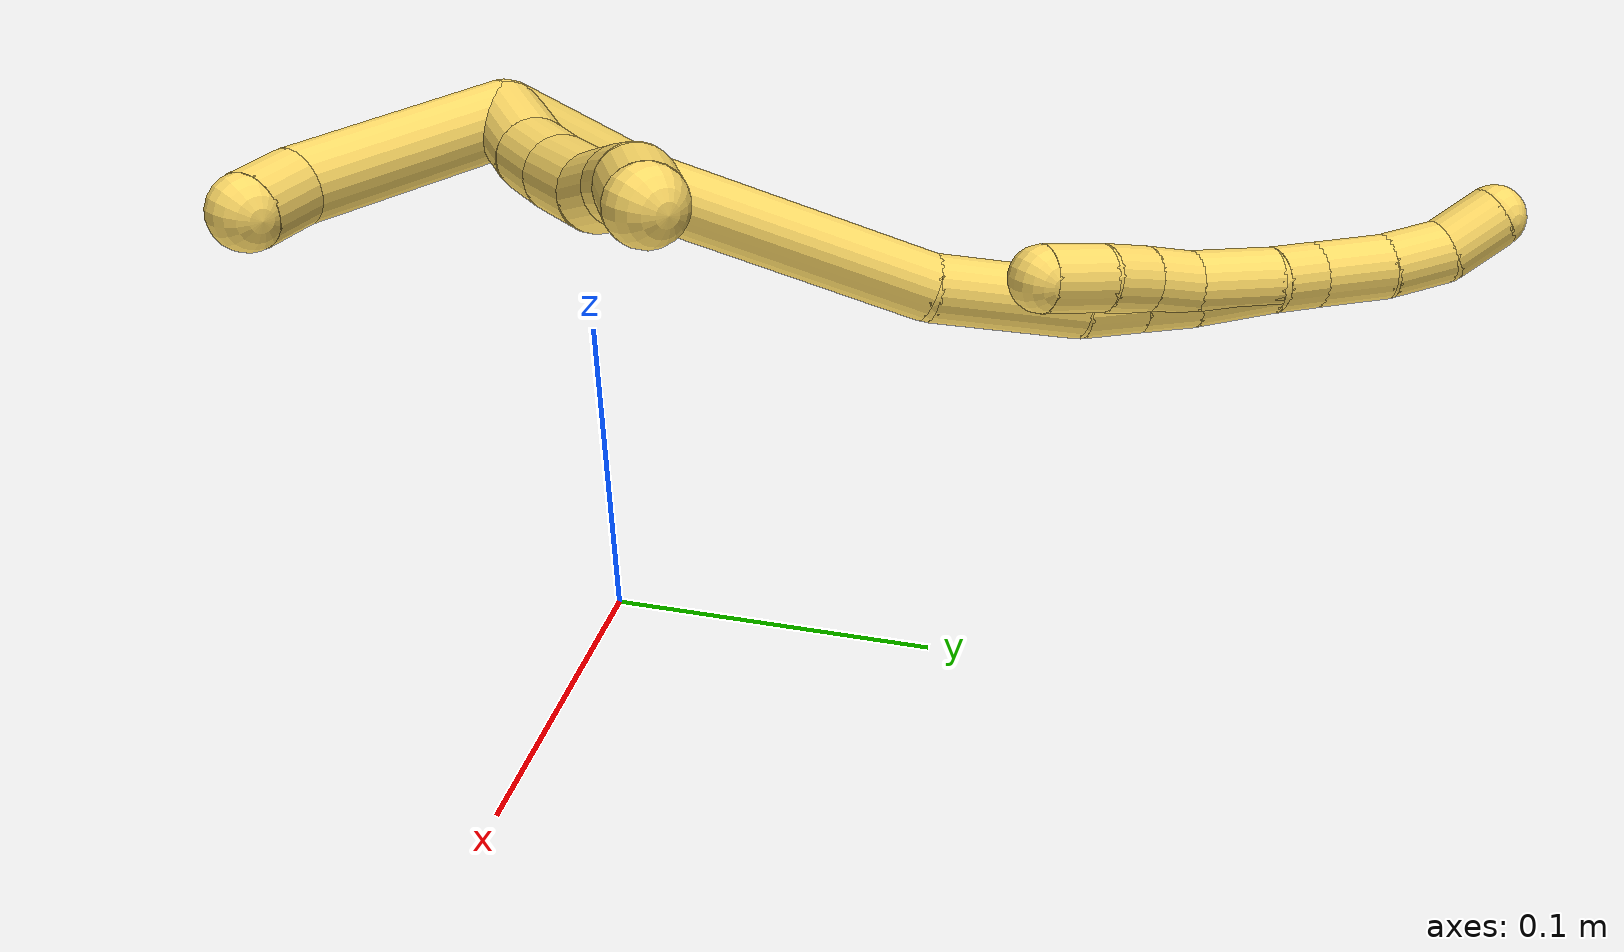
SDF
<sdf version="1.7">
 <world name="default">
  <model name="5">
   <static>0</static>
   <link name="5">
    <collision name="collision-cylinder-e_1_2_8">
     <pose>0.003328 -0.001445 0.014878 0.096834 0.219062 0.010657</pose>
     <geometry><cylinder><radius>0.0125</radius><length>0.030628</length></cylinder></geometry>
     <surface>
      <friction><ode><mu>1.16</mu><mu2>1.16</mu2><slip1>0</slip1><slip2>0</slip2></ode></friction>
      <contact><ode><kp>1e+06</kp><kd>1</kd><max_vel>0</max_vel><min_depth>0.001</min_depth></ode></contact>
     </surface>
    </collision>
    <visual name="visual-cylinder-e_1_2_8">
     <pose>0.003328 -0.001445 0.014878 0.096834 0.219062 0.010657</pose>
     <geometry><cylinder><radius>0.0125</radius><length>0.030628</length></cylinder></geometry>
     <material><ambient>1 0.858824 0.4 1</ambient></material>
    </visual>
    <collision name="collision-cylinder-e_2_8_9">
     <pose>0.007239 -0.003988 0.041217 0.095436 0.050581 0.002416</pose>
     <geometry><cylinder><radius>0.0125</radius><length>0.023057</length></cylinder></geometry>
     <surface>
      <friction><ode><mu>1.16</mu><mu2>1.16</mu2><slip1>0</slip1><slip2>0</slip2></ode></friction>
      <contact><ode><kp>1e+06</kp><kd>1</kd><max_vel>0</max_vel><min_depth>0.001</min_depth></ode></contact>
     </surface>
    </collision>
    <visual name="visual-cylinder-e_2_8_9">
     <pose>0.007239 -0.003988 0.041217 0.095436 0.050581 0.002416</pose>
     <geometry><cylinder><radius>0.0125</radius><length>0.023057</length></cylinder></geometry>
     <material><ambient>1 0.858824 0.4 1</ambient></material>
    </visual>
    <collision name="collision-cylinder-e_3_9_10">
     <pose>0.007654 -0.007415 0.067494 0.156025 -0.01114 -0.000871</pose>
     <geometry><cylinder><radius>0.0125</radius><length>0.029999</length></cylinder></geometry>
     <surface>
      <friction><ode><mu>1.16</mu><mu2>1.16</mu2><slip1>0</slip1><slip2>0</slip2></ode></friction>
      <contact><ode><kp>1e+06</kp><kd>1</kd><max_vel>0</max_vel><min_depth>0.001</min_depth></ode></contact>
     </surface>
    </collision>
    <visual name="visual-cylinder-e_3_9_10">
     <pose>0.007654 -0.007415 0.067494 0.156025 -0.01114 -0.000871</pose>
     <geometry><cylinder><radius>0.0125</radius><length>0.029999</length></cylinder></geometry>
     <material><ambient>1 0.858824 0.4 1</ambient></material>
    </visual>
    <collision name="collision-cylinder-e_4_10_11">
     <pose>0.004565 -0.01292 0.093324 0.280554 -0.249674 -0.035436</pose>
     <geometry><cylinder><radius>0.0125</radius><length>0.023656</length></cylinder></geometry>
     <surface>
      <friction><ode><mu>1.16</mu><mu2>1.16</mu2><slip1>0</slip1><slip2>0</slip2></ode></friction>
      <contact><ode><kp>1e+06</kp><kd>1</kd><max_vel>0</max_vel><min_depth>0.001</min_depth></ode></contact>
     </surface>
    </collision>
    <visual name="visual-cylinder-e_4_10_11">
     <pose>0.004565 -0.01292 0.093324 0.280554 -0.249674 -0.035436</pose>
     <geometry><cylinder><radius>0.0125</radius><length>0.023656</length></cylinder></geometry>
     <material><ambient>1 0.858824 0.4 1</ambient></material>
    </visual>
    <collision name="collision-cylinder-e_5_11_12">
     <pose>0.000322 -0.020473 0.114135 0.420385 -0.122424 -0.02615</pose>
     <geometry><cylinder><radius>0.0125</radius><length>0.021627</length></cylinder></geometry>
     <surface>
      <friction><ode><mu>1.16</mu><mu2>1.16</mu2><slip1>0</slip1><slip2>0</slip2></ode></friction>
      <contact><ode><kp>1e+06</kp><kd>1</kd><max_vel>0</max_vel><min_depth>0.001</min_depth></ode></contact>
     </surface>
    </collision>
    <visual name="visual-cylinder-e_5_11_12">
     <pose>0.000322 -0.020473 0.114135 0.420385 -0.122424 -0.02615</pose>
     <geometry><cylinder><radius>0.0125</radius><length>0.021627</length></cylinder></geometry>
     <material><ambient>1 0.858824 0.4 1</ambient></material>
    </visual>
    <collision name="collision-cylinder-e_6_12_6">
     <pose>0.00043 -0.028602 0.133655 0.368034 0.136266 0.0254</pose>
     <geometry><cylinder><radius>0.0125</radius><length>0.021034</length></cylinder></geometry>
     <surface>
      <friction><ode><mu>1.16</mu><mu2>1.16</mu2><slip1>0</slip1><slip2>0</slip2></ode></friction>
      <contact><ode><kp>1e+06</kp><kd>1</kd><max_vel>0</max_vel><min_depth>0.001</min_depth></ode></contact>
     </surface>
    </collision>
    <visual name="visual-cylinder-e_6_12_6">
     <pose>0.00043 -0.028602 0.133655 0.368034 0.136266 0.0254</pose>
     <geometry><cylinder><radius>0.0125</radius><length>0.021034</length></cylinder></geometry>
     <material><ambient>1 0.858824 0.4 1</ambient></material>
    </visual>
    <collision name="collision-cylinder-e_1_2_13">
     <pose>0.021167 -0.032554 0.005584 1.40092 0.569932 0.484247</pose>
     <geometry><cylinder><radius>0.0125</radius><length>0.07846</length></cylinder></geometry>
     <surface>
      <friction><ode><mu>1.16</mu><mu2>1.16</mu2><slip1>0</slip1><slip2>0</slip2></ode></friction>
      <contact><ode><kp>1e+06</kp><kd>1</kd><max_vel>0</max_vel><min_depth>0.001</min_depth></ode></contact>
     </surface>
    </collision>
    <visual name="visual-cylinder-e_1_2_13">
     <pose>0.021167 -0.032554 0.005584 1.40092 0.569932 0.484247</pose>
     <geometry><cylinder><radius>0.0125</radius><length>0.07846</length></cylinder></geometry>
     <material><ambient>1 0.858824 0.4 1</ambient></material>
    </visual>
    <collision name="collision-cylinder-e_2_13_5">
     <pose>0.047529 -0.073118 0.016153 1.01413 0.503228 0.283685</pose>
     <geometry><cylinder><radius>0.0125</radius><length>0.02154</length></cylinder></geometry>
     <surface>
      <friction><ode><mu>1.16</mu><mu2>1.16</mu2><slip1>0</slip1><slip2>0</slip2></ode></friction>
      <contact><ode><kp>1e+06</kp><kd>1</kd><max_vel>0</max_vel><min_depth>0.001</min_depth></ode></contact>
     </surface>
    </collision>
    <visual name="visual-cylinder-e_2_13_5">
     <pose>0.047529 -0.073118 0.016153 1.01413 0.503228 0.283685</pose>
     <geometry><cylinder><radius>0.0125</radius><length>0.02154</length></cylinder></geometry>
     <material><ambient>1 0.858824 0.4 1</ambient></material>
    </visual>
    <collision name="collision-cylinder-e_1_2_14">
     <pose>0.002721 0.027853 0.003269 -1.45398 0.096711 -0.086039</pose>
     <geometry><cylinder><radius>0.0125</radius><length>0.056351</length></cylinder></geometry>
     <surface>
      <friction><ode><mu>1.16</mu><mu2>1.16</mu2><slip1>0</slip1><slip2>0</slip2></ode></friction>
      <contact><ode><kp>1e+06</kp><kd>1</kd><max_vel>0</max_vel><min_depth>0.001</min_depth></ode></contact>
     </surface>
    </collision>
    <visual name="visual-cylinder-e_1_2_14">
     <pose>0.002721 0.027853 0.003269 -1.45398 0.096711 -0.086039</pose>
     <geometry><cylinder><radius>0.0125</radius><length>0.056351</length></cylinder></geometry>
     <material><ambient>1 0.858824 0.4 1</ambient></material>
    </visual>
    <collision name="collision-cylinder-e_2_14_15">
     <pose>0.003045 0.104444 0.028899 -1.14063 -0.044652 0.028643</pose>
     <geometry><cylinder><radius>0.0125</radius><length>0.107354</length></cylinder></geometry>
     <surface>
      <friction><ode><mu>1.16</mu><mu2>1.16</mu2><slip1>0</slip1><slip2>0</slip2></ode></friction>
      <contact><ode><kp>1e+06</kp><kd>1</kd><max_vel>0</max_vel><min_depth>0.001</min_depth></ode></contact>
     </surface>
    </collision>
    <visual name="visual-cylinder-e_2_14_15">
     <pose>0.003045 0.104444 0.028899 -1.14063 -0.044652 0.028643</pose>
     <geometry><cylinder><radius>0.0125</radius><length>0.107354</length></cylinder></geometry>
     <material><ambient>1 0.858824 0.4 1</ambient></material>
    </visual>
    <collision name="collision-cylinder-e_3_15_16">
     <pose>-0.00656 0.18025 0.060414 -1.2447 -0.247138 0.17775</pose>
     <geometry><cylinder><radius>0.0125</radius><length>0.058937</length></cylinder></geometry>
     <surface>
      <friction><ode><mu>1.16</mu><mu2>1.16</mu2><slip1>0</slip1><slip2>0</slip2></ode></friction>
      <contact><ode><kp>1e+06</kp><kd>1</kd><max_vel>0</max_vel><min_depth>0.001</min_depth></ode></contact>
     </surface>
    </collision>
    <visual name="visual-cylinder-e_3_15_16">
     <pose>-0.00656 0.18025 0.060414 -1.2447 -0.247138 0.17775</pose>
     <geometry><cylinder><radius>0.0125</radius><length>0.058937</length></cylinder></geometry>
     <material><ambient>1 0.858824 0.4 1</ambient></material>
    </visual>
    <collision name="collision-cylinder-e_4_16_17">
     <pose>-0.018686 0.217325 0.072784 -1.25988 -0.437533 0.321364</pose>
     <geometry><cylinder><radius>0.0125</radius><length>0.023211</length></cylinder></geometry>
     <surface>
      <friction><ode><mu>1.16</mu><mu2>1.16</mu2><slip1>0</slip1><slip2>0</slip2></ode></friction>
      <contact><ode><kp>1e+06</kp><kd>1</kd><max_vel>0</max_vel><min_depth>0.001</min_depth></ode></contact>
     </surface>
    </collision>
    <visual name="visual-cylinder-e_4_16_17">
     <pose>-0.018686 0.217325 0.072784 -1.25988 -0.437533 0.321364</pose>
     <geometry><cylinder><radius>0.0125</radius><length>0.023211</length></cylinder></geometry>
     <material><ambient>1 0.858824 0.4 1</ambient></material>
    </visual>
    <collision name="collision-cylinder-e_5_17_18">
     <pose>-0.028252 0.236757 0.079172 -1.24606 -0.437355 0.316671</pose>
     <geometry><cylinder><radius>0.0125</radius><length>0.021952</length></cylinder></geometry>
     <surface>
      <friction><ode><mu>1.16</mu><mu2>1.16</mu2><slip1>0</slip1><slip2>0</slip2></ode></friction>
      <contact><ode><kp>1e+06</kp><kd>1</kd><max_vel>0</max_vel><min_depth>0.001</min_depth></ode></contact>
     </surface>
    </collision>
    <visual name="visual-cylinder-e_5_17_18">
     <pose>-0.028252 0.236757 0.079172 -1.24606 -0.437355 0.316671</pose>
     <geometry><cylinder><radius>0.0125</radius><length>0.021952</length></cylinder></geometry>
     <material><ambient>1 0.858824 0.4 1</ambient></material>
    </visual>
    <collision name="collision-cylinder-e_6_18_1">
     <pose>-0.041116 0.258814 0.088003 -1.14972 -0.535573 0.351831</pose>
     <geometry><cylinder><radius>0.0125</radius><length>0.032194</length></cylinder></geometry>
     <surface>
      <friction><ode><mu>1.16</mu><mu2>1.16</mu2><slip1>0</slip1><slip2>0</slip2></ode></friction>
      <contact><ode><kp>1e+06</kp><kd>1</kd><max_vel>0</max_vel><min_depth>0.001</min_depth></ode></contact>
     </surface>
    </collision>
    <visual name="visual-cylinder-e_6_18_1">
     <pose>-0.041116 0.258814 0.088003 -1.14972 -0.535573 0.351831</pose>
     <geometry><cylinder><radius>0.0125</radius><length>0.032194</length></cylinder></geometry>
     <material><ambient>1 0.858824 0.4 1</ambient></material>
    </visual>
    <collision name="collision-cylinder-e_1_1_19">
     <pose>-0.042639 0.256542 0.088601 1.89808 0.401956 0.554005</pose>
     <geometry><cylinder><radius>0.0125</radius><length>0.034211</length></cylinder></geometry>
     <surface>
      <friction><ode><mu>1.16</mu><mu2>1.16</mu2><slip1>0</slip1><slip2>0</slip2></ode></friction>
      <contact><ode><kp>1e+06</kp><kd>1</kd><max_vel>0</max_vel><min_depth>0.001</min_depth></ode></contact>
     </surface>
    </collision>
    <visual name="visual-cylinder-e_1_1_19">
     <pose>-0.042639 0.256542 0.088601 1.89808 0.401956 0.554005</pose>
     <geometry><cylinder><radius>0.0125</radius><length>0.034211</length></cylinder></geometry>
     <material><ambient>1 0.858824 0.4 1</ambient></material>
    </visual>
    <collision name="collision-cylinder-e_2_19_20">
     <pose>-0.03354 0.231987 0.081908 1.7384 0.241159 0.28484</pose>
     <geometry><cylinder><radius>0.0125</radius><length>0.020154</length></cylinder></geometry>
     <surface>
      <friction><ode><mu>1.16</mu><mu2>1.16</mu2><slip1>0</slip1><slip2>0</slip2></ode></friction>
      <contact><ode><kp>1e+06</kp><kd>1</kd><max_vel>0</max_vel><min_depth>0.001</min_depth></ode></contact>
     </surface>
    </collision>
    <visual name="visual-cylinder-e_2_19_20">
     <pose>-0.03354 0.231987 0.081908 1.7384 0.241159 0.28484</pose>
     <geometry><cylinder><radius>0.0125</radius><length>0.020154</length></cylinder></geometry>
     <material><ambient>1 0.858824 0.4 1</ambient></material>
    </visual>
    <collision name="collision-cylinder-e_3_20_21">
     <pose>-0.028537 0.212568 0.079818 1.61755 0.259469 0.271744</pose>
     <geometry><cylinder><radius>0.0125</radius><length>0.020242</length></cylinder></geometry>
     <surface>
      <friction><ode><mu>1.16</mu><mu2>1.16</mu2><slip1>0</slip1><slip2>0</slip2></ode></friction>
      <contact><ode><kp>1e+06</kp><kd>1</kd><max_vel>0</max_vel><min_depth>0.001</min_depth></ode></contact>
     </surface>
    </collision>
    <visual name="visual-cylinder-e_3_20_21">
     <pose>-0.028537 0.212568 0.079818 1.61755 0.259469 0.271744</pose>
     <geometry><cylinder><radius>0.0125</radius><length>0.020242</length></cylinder></geometry>
     <material><ambient>1 0.858824 0.4 1</ambient></material>
    </visual>
    <collision name="collision-cylinder-e_4_21_4">
     <pose>-0.021753 0.190953 0.077509 1.72593 0.336042 0.391346</pose>
     <geometry><cylinder><radius>0.0125</radius><length>0.025394</length></cylinder></geometry>
     <surface>
      <friction><ode><mu>1.16</mu><mu2>1.16</mu2><slip1>0</slip1><slip2>0</slip2></ode></friction>
      <contact><ode><kp>1e+06</kp><kd>1</kd><max_vel>0</max_vel><min_depth>0.001</min_depth></ode></contact>
     </surface>
    </collision>
    <visual name="visual-cylinder-e_4_21_4">
     <pose>-0.021753 0.190953 0.077509 1.72593 0.336042 0.391346</pose>
     <geometry><cylinder><radius>0.0125</radius><length>0.025394</length></cylinder></geometry>
     <material><ambient>1 0.858824 0.4 1</ambient></material>
    </visual>
    <collision name="collision-cylinder-e_1_1_22">
     <pose>-0.053346 0.280591 0.094659 -1.46212 -0.411616 0.370167</pose>
     <geometry><cylinder><radius>0.0125</radius><length>0.02007</length></cylinder></geometry>
     <surface>
      <friction><ode><mu>1.16</mu><mu2>1.16</mu2><slip1>0</slip1><slip2>0</slip2></ode></friction>
      <contact><ode><kp>1e+06</kp><kd>1</kd><max_vel>0</max_vel><min_depth>0.001</min_depth></ode></contact>
     </surface>
    </collision>
    <visual name="visual-cylinder-e_1_1_22">
     <pose>-0.053346 0.280591 0.094659 -1.46212 -0.411616 0.370167</pose>
     <geometry><cylinder><radius>0.0125</radius><length>0.02007</length></cylinder></geometry>
     <material><ambient>1 0.858824 0.4 1</ambient></material>
    </visual>
    <collision name="collision-cylinder-e_2_22_23">
     <pose>-0.064203 0.301742 0.100936 -1.1566 -0.480804 0.317339</pose>
     <geometry><cylinder><radius>0.0125</radius><length>0.02959</length></cylinder></geometry>
     <surface>
      <friction><ode><mu>1.16</mu><mu2>1.16</mu2><slip1>0</slip1><slip2>0</slip2></ode></friction>
      <contact><ode><kp>1e+06</kp><kd>1</kd><max_vel>0</max_vel><min_depth>0.001</min_depth></ode></contact>
     </surface>
    </collision>
    <visual name="visual-cylinder-e_2_22_23">
     <pose>-0.064203 0.301742 0.100936 -1.1566 -0.480804 0.317339</pose>
     <geometry><cylinder><radius>0.0125</radius><length>0.02959</length></cylinder></geometry>
     <material><ambient>1 0.858824 0.4 1</ambient></material>
    </visual>
    <collision name="collision-cylinder-e_3_23_24">
     <pose>-0.078088 0.323437 0.109756 -1.22028 -0.599068 0.425289</pose>
     <geometry><cylinder><radius>0.0125</radius><length>0.024976</length></cylinder></geometry>
     <surface>
      <friction><ode><mu>1.16</mu><mu2>1.16</mu2><slip1>0</slip1><slip2>0</slip2></ode></friction>
      <contact><ode><kp>1e+06</kp><kd>1</kd><max_vel>0</max_vel><min_depth>0.001</min_depth></ode></contact>
     </surface>
    </collision>
    <visual name="visual-cylinder-e_3_23_24">
     <pose>-0.078088 0.323437 0.109756 -1.22028 -0.599068 0.425289</pose>
     <geometry><cylinder><radius>0.0125</radius><length>0.024976</length></cylinder></geometry>
     <material><ambient>1 0.858824 0.4 1</ambient></material>
    </visual>
    <collision name="collision-cylinder-e_4_24_3">
     <pose>-0.095324 0.340141 0.116063 -1.19538 -0.933792 0.661107</pose>
     <geometry><cylinder><radius>0.0125</radius><length>0.025363</length></cylinder></geometry>
     <surface>
      <friction><ode><mu>1.16</mu><mu2>1.16</mu2><slip1>0</slip1><slip2>0</slip2></ode></friction>
      <contact><ode><kp>1e+06</kp><kd>1</kd><max_vel>0</max_vel><min_depth>0.001</min_depth></ode></contact>
     </surface>
    </collision>
    <visual name="visual-cylinder-e_4_24_3">
     <pose>-0.095324 0.340141 0.116063 -1.19538 -0.933792 0.661107</pose>
     <geometry><cylinder><radius>0.0125</radius><length>0.025363</length></cylinder></geometry>
     <material><ambient>1 0.858824 0.4 1</ambient></material>
    </visual>
    <collision name="collision-sphere-3">
     <pose>-0.105518 0.347158 0.118829 0 -0 0</pose>
     <geometry><sphere><radius>0.0125</radius></sphere></geometry>
     <surface>
      <friction><ode><mu>1.16</mu><mu2>1.16</mu2><slip1>0</slip1><slip2>0</slip2></ode></friction>
      <contact><ode><kp>1e+06</kp><kd>1</kd><max_vel>0</max_vel><min_depth>0.001</min_depth></ode></contact>
     </surface>
    </collision>
    <visual name="visual-sphere-3">
     <pose>-0.105518 0.347158 0.118829 0 -0 0</pose>
     <geometry><sphere><radius>0.0125</radius></sphere></geometry>
     <material><ambient>1 0.858824 0.4 1</ambient></material>
    </visual>
    <collision name="collision-sphere-24">
     <pose>-0.085129 0.333123 0.113298 0 -0 0</pose>
     <geometry><sphere><radius>0.0125</radius></sphere></geometry>
     <surface>
      <friction><ode><mu>1.16</mu><mu2>1.16</mu2><slip1>0</slip1><slip2>0</slip2></ode></friction>
      <contact><ode><kp>1e+06</kp><kd>1</kd><max_vel>0</max_vel><min_depth>0.001</min_depth></ode></contact>
     </surface>
    </collision>
    <visual name="visual-sphere-24">
     <pose>-0.085129 0.333123 0.113298 0 -0 0</pose>
     <geometry><sphere><radius>0.0125</radius></sphere></geometry>
     <material><ambient>1 0.858824 0.4 1</ambient></material>
    </visual>
    <collision name="collision-sphere-23">
     <pose>-0.071046 0.31375 0.106215 0 -0 0</pose>
     <geometry><sphere><radius>0.0125</radius></sphere></geometry>
     <surface>
      <friction><ode><mu>1.16</mu><mu2>1.16</mu2><slip1>0</slip1><slip2>0</slip2></ode></friction>
      <contact><ode><kp>1e+06</kp><kd>1</kd><max_vel>0</max_vel><min_depth>0.001</min_depth></ode></contact>
     </surface>
    </collision>
    <visual name="visual-sphere-23">
     <pose>-0.071046 0.31375 0.106215 0 -0 0</pose>
     <geometry><sphere><radius>0.0125</radius></sphere></geometry>
     <material><ambient>1 0.858824 0.4 1</ambient></material>
    </visual>
    <collision name="collision-sphere-22">
     <pose>-0.057361 0.289734 0.095656 0 -0 0</pose>
     <geometry><sphere><radius>0.0125</radius></sphere></geometry>
     <surface>
      <friction><ode><mu>1.16</mu><mu2>1.16</mu2><slip1>0</slip1><slip2>0</slip2></ode></friction>
      <contact><ode><kp>1e+06</kp><kd>1</kd><max_vel>0</max_vel><min_depth>0.001</min_depth></ode></contact>
     </surface>
    </collision>
    <visual name="visual-sphere-22">
     <pose>-0.057361 0.289734 0.095656 0 -0 0</pose>
     <geometry><sphere><radius>0.0125</radius></sphere></geometry>
     <material><ambient>1 0.858824 0.4 1</ambient></material>
    </visual>
    <collision name="collision-sphere-4">
     <pose>-0.017566 0.179111 0.075657 0 -0 0</pose>
     <geometry><sphere><radius>0.0125</radius></sphere></geometry>
     <surface>
      <friction><ode><mu>1.16</mu><mu2>1.16</mu2><slip1>0</slip1><slip2>0</slip2></ode></friction>
      <contact><ode><kp>1e+06</kp><kd>1</kd><max_vel>0</max_vel><min_depth>0.001</min_depth></ode></contact>
     </surface>
    </collision>
    <visual name="visual-sphere-4">
     <pose>-0.017566 0.179111 0.075657 0 -0 0</pose>
     <geometry><sphere><radius>0.0125</radius></sphere></geometry>
     <material><ambient>1 0.858824 0.4 1</ambient></material>
    </visual>
    <collision name="collision-sphere-21">
     <pose>-0.02594 0.202796 0.079361 0 -0 0</pose>
     <geometry><sphere><radius>0.0125</radius></sphere></geometry>
     <surface>
      <friction><ode><mu>1.16</mu><mu2>1.16</mu2><slip1>0</slip1><slip2>0</slip2></ode></friction>
      <contact><ode><kp>1e+06</kp><kd>1</kd><max_vel>0</max_vel><min_depth>0.001</min_depth></ode></contact>
     </surface>
    </collision>
    <visual name="visual-sphere-21">
     <pose>-0.02594 0.202796 0.079361 0 -0 0</pose>
     <geometry><sphere><radius>0.0125</radius></sphere></geometry>
     <material><ambient>1 0.858824 0.4 1</ambient></material>
    </visual>
    <collision name="collision-sphere-20">
     <pose>-0.031134 0.222339 0.080275 0 -0 0</pose>
     <geometry><sphere><radius>0.0125</radius></sphere></geometry>
     <surface>
      <friction><ode><mu>1.16</mu><mu2>1.16</mu2><slip1>0</slip1><slip2>0</slip2></ode></friction>
      <contact><ode><kp>1e+06</kp><kd>1</kd><max_vel>0</max_vel><min_depth>0.001</min_depth></ode></contact>
     </surface>
    </collision>
    <visual name="visual-sphere-20">
     <pose>-0.031134 0.222339 0.080275 0 -0 0</pose>
     <geometry><sphere><radius>0.0125</radius></sphere></geometry>
     <material><ambient>1 0.858824 0.4 1</ambient></material>
    </visual>
    <collision name="collision-sphere-12">
     <pose>-0.000999 -0.024853 0.123933 0 -0 0</pose>
     <geometry><sphere><radius>0.0125</radius></sphere></geometry>
     <surface>
      <friction><ode><mu>1.16</mu><mu2>1.16</mu2><slip1>0</slip1><slip2>0</slip2></ode></friction>
      <contact><ode><kp>1e+06</kp><kd>1</kd><max_vel>0</max_vel><min_depth>0.001</min_depth></ode></contact>
     </surface>
    </collision>
    <visual name="visual-sphere-12">
     <pose>-0.000999 -0.024853 0.123933 0 -0 0</pose>
     <geometry><sphere><radius>0.0125</radius></sphere></geometry>
     <material><ambient>1 0.858824 0.4 1</ambient></material>
    </visual>
    <collision name="collision-sphere-11">
     <pose>0.001642 -0.016093 0.104337 0 -0 0</pose>
     <geometry><sphere><radius>0.0125</radius></sphere></geometry>
     <surface>
      <friction><ode><mu>1.16</mu><mu2>1.16</mu2><slip1>0</slip1><slip2>0</slip2></ode></friction>
      <contact><ode><kp>1e+06</kp><kd>1</kd><max_vel>0</max_vel><min_depth>0.001</min_depth></ode></contact>
     </surface>
    </collision>
    <visual name="visual-sphere-11">
     <pose>0.001642 -0.016093 0.104337 0 -0 0</pose>
     <geometry><sphere><radius>0.0125</radius></sphere></geometry>
     <material><ambient>1 0.858824 0.4 1</ambient></material>
    </visual>
    <collision name="collision-sphere-10">
     <pose>0.007487 -0.009746 0.082311 0 -0 0</pose>
     <geometry><sphere><radius>0.0125</radius></sphere></geometry>
     <surface>
      <friction><ode><mu>1.16</mu><mu2>1.16</mu2><slip1>0</slip1><slip2>0</slip2></ode></friction>
      <contact><ode><kp>1e+06</kp><kd>1</kd><max_vel>0</max_vel><min_depth>0.001</min_depth></ode></contact>
     </surface>
    </collision>
    <visual name="visual-sphere-10">
     <pose>0.007487 -0.009746 0.082311 0 -0 0</pose>
     <geometry><sphere><radius>0.0125</radius></sphere></geometry>
     <material><ambient>1 0.858824 0.4 1</ambient></material>
    </visual>
    <collision name="collision-sphere-9">
     <pose>0.007822 -0.005085 0.052678 0 -0 0</pose>
     <geometry><sphere><radius>0.0125</radius></sphere></geometry>
     <surface>
      <friction><ode><mu>1.16</mu><mu2>1.16</mu2><slip1>0</slip1><slip2>0</slip2></ode></friction>
      <contact><ode><kp>1e+06</kp><kd>1</kd><max_vel>0</max_vel><min_depth>0.001</min_depth></ode></contact>
     </surface>
    </collision>
    <visual name="visual-sphere-9">
     <pose>0.007822 -0.005085 0.052678 0 -0 0</pose>
     <geometry><sphere><radius>0.0125</radius></sphere></geometry>
     <material><ambient>1 0.858824 0.4 1</ambient></material>
    </visual>
    <collision name="collision-sphere-2">
     <geometry><sphere><radius>0.0125</radius></sphere></geometry>
     <surface>
      <friction><ode><mu>1.16</mu><mu2>1.16</mu2><slip1>0</slip1><slip2>0</slip2></ode></friction>
      <contact><ode><kp>1e+06</kp><kd>1</kd><max_vel>0</max_vel><min_depth>0.001</min_depth></ode></contact>
     </surface>
    </collision>
    <visual name="visual-sphere-2">
     <geometry><sphere><radius>0.0125</radius></sphere></geometry>
     <material><ambient>1 0.858824 0.4 1</ambient></material>
    </visual>
    <collision name="collision-sphere-19">
     <pose>-0.035947 0.241635 0.08354 0 -0 0</pose>
     <geometry><sphere><radius>0.0125</radius></sphere></geometry>
     <surface>
      <friction><ode><mu>1.16</mu><mu2>1.16</mu2><slip1>0</slip1><slip2>0</slip2></ode></friction>
      <contact><ode><kp>1e+06</kp><kd>1</kd><max_vel>0</max_vel><min_depth>0.001</min_depth></ode></contact>
     </surface>
    </collision>
    <visual name="visual-sphere-19">
     <pose>-0.035947 0.241635 0.08354 0 -0 0</pose>
     <geometry><sphere><radius>0.0125</radius></sphere></geometry>
     <material><ambient>1 0.858824 0.4 1</ambient></material>
    </visual>
    <collision name="collision-sphere-8">
     <pose>0.006656 -0.00289 0.029756 0 -0 0</pose>
     <geometry><sphere><radius>0.0125</radius></sphere></geometry>
     <surface>
      <friction><ode><mu>1.16</mu><mu2>1.16</mu2><slip1>0</slip1><slip2>0</slip2></ode></friction>
      <contact><ode><kp>1e+06</kp><kd>1</kd><max_vel>0</max_vel><min_depth>0.001</min_depth></ode></contact>
     </surface>
    </collision>
    <visual name="visual-sphere-8">
     <pose>0.006656 -0.00289 0.029756 0 -0 0</pose>
     <geometry><sphere><radius>0.0125</radius></sphere></geometry>
     <material><ambient>1 0.858824 0.4 1</ambient></material>
    </visual>
    <collision name="collision-sphere-6">
     <pose>0.001859 -0.03235 0.143377 0 -0 0</pose>
     <geometry><sphere><radius>0.0125</radius></sphere></geometry>
     <surface>
      <friction><ode><mu>1.16</mu><mu2>1.16</mu2><slip1>0</slip1><slip2>0</slip2></ode></friction>
      <contact><ode><kp>1e+06</kp><kd>1</kd><max_vel>0</max_vel><min_depth>0.001</min_depth></ode></contact>
     </surface>
    </collision>
    <visual name="visual-sphere-6">
     <pose>0.001859 -0.03235 0.143377 0 -0 0</pose>
     <geometry><sphere><radius>0.0125</radius></sphere></geometry>
     <material><ambient>1 0.858824 0.4 1</ambient></material>
    </visual>
    <collision name="collision-sphere-13">
     <pose>0.042335 -0.065107 0.011168 0 -0 0</pose>
     <geometry><sphere><radius>0.0125</radius></sphere></geometry>
     <surface>
      <friction><ode><mu>1.16</mu><mu2>1.16</mu2><slip1>0</slip1><slip2>0</slip2></ode></friction>
      <contact><ode><kp>1e+06</kp><kd>1</kd><max_vel>0</max_vel><min_depth>0.001</min_depth></ode></contact>
     </surface>
    </collision>
    <visual name="visual-sphere-13">
     <pose>0.042335 -0.065107 0.011168 0 -0 0</pose>
     <geometry><sphere><radius>0.0125</radius></sphere></geometry>
     <material><ambient>1 0.858824 0.4 1</ambient></material>
    </visual>
    <collision name="collision-sphere-5">
     <pose>0.052723 -0.081128 0.021138 0 -0 0</pose>
     <geometry><sphere><radius>0.0125</radius></sphere></geometry>
     <surface>
      <friction><ode><mu>1.16</mu><mu2>1.16</mu2><slip1>0</slip1><slip2>0</slip2></ode></friction>
      <contact><ode><kp>1e+06</kp><kd>1</kd><max_vel>0</max_vel><min_depth>0.001</min_depth></ode></contact>
     </surface>
    </collision>
    <visual name="visual-sphere-5">
     <pose>0.052723 -0.081128 0.021138 0 -0 0</pose>
     <geometry><sphere><radius>0.0125</radius></sphere></geometry>
     <material><ambient>1 0.858824 0.4 1</ambient></material>
    </visual>
    <collision name="collision-sphere-14">
     <pose>0.005441 0.055706 0.006537 0 -0 0</pose>
     <geometry><sphere><radius>0.0125</radius></sphere></geometry>
     <surface>
      <friction><ode><mu>1.16</mu><mu2>1.16</mu2><slip1>0</slip1><slip2>0</slip2></ode></friction>
      <contact><ode><kp>1e+06</kp><kd>1</kd><max_vel>0</max_vel><min_depth>0.001</min_depth></ode></contact>
     </surface>
    </collision>
    <visual name="visual-sphere-14">
     <pose>0.005441 0.055706 0.006537 0 -0 0</pose>
     <geometry><sphere><radius>0.0125</radius></sphere></geometry>
     <material><ambient>1 0.858824 0.4 1</ambient></material>
    </visual>
    <collision name="collision-sphere-15">
     <pose>0.000649 0.153182 0.051261 0 -0 0</pose>
     <geometry><sphere><radius>0.0125</radius></sphere></geometry>
     <surface>
      <friction><ode><mu>1.16</mu><mu2>1.16</mu2><slip1>0</slip1><slip2>0</slip2></ode></friction>
      <contact><ode><kp>1e+06</kp><kd>1</kd><max_vel>0</max_vel><min_depth>0.001</min_depth></ode></contact>
     </surface>
    </collision>
    <visual name="visual-sphere-15">
     <pose>0.000649 0.153182 0.051261 0 -0 0</pose>
     <geometry><sphere><radius>0.0125</radius></sphere></geometry>
     <material><ambient>1 0.858824 0.4 1</ambient></material>
    </visual>
    <collision name="collision-sphere-16">
     <pose>-0.013768 0.207317 0.069568 0 -0 0</pose>
     <geometry><sphere><radius>0.0125</radius></sphere></geometry>
     <surface>
      <friction><ode><mu>1.16</mu><mu2>1.16</mu2><slip1>0</slip1><slip2>0</slip2></ode></friction>
      <contact><ode><kp>1e+06</kp><kd>1</kd><max_vel>0</max_vel><min_depth>0.001</min_depth></ode></contact>
     </surface>
    </collision>
    <visual name="visual-sphere-16">
     <pose>-0.013768 0.207317 0.069568 0 -0 0</pose>
     <geometry><sphere><radius>0.0125</radius></sphere></geometry>
     <material><ambient>1 0.858824 0.4 1</ambient></material>
    </visual>
    <collision name="collision-sphere-17">
     <pose>-0.023603 0.227334 0.076 0 -0 0</pose>
     <geometry><sphere><radius>0.0125</radius></sphere></geometry>
     <surface>
      <friction><ode><mu>1.16</mu><mu2>1.16</mu2><slip1>0</slip1><slip2>0</slip2></ode></friction>
      <contact><ode><kp>1e+06</kp><kd>1</kd><max_vel>0</max_vel><min_depth>0.001</min_depth></ode></contact>
     </surface>
    </collision>
    <visual name="visual-sphere-17">
     <pose>-0.023603 0.227334 0.076 0 -0 0</pose>
     <geometry><sphere><radius>0.0125</radius></sphere></geometry>
     <material><ambient>1 0.858824 0.4 1</ambient></material>
    </visual>
    <collision name="collision-sphere-18">
     <pose>-0.032901 0.24618 0.082345 0 -0 0</pose>
     <geometry><sphere><radius>0.0125</radius></sphere></geometry>
     <surface>
      <friction><ode><mu>1.16</mu><mu2>1.16</mu2><slip1>0</slip1><slip2>0</slip2></ode></friction>
      <contact><ode><kp>1e+06</kp><kd>1</kd><max_vel>0</max_vel><min_depth>0.001</min_depth></ode></contact>
     </surface>
    </collision>
    <visual name="visual-sphere-18">
     <pose>-0.032901 0.24618 0.082345 0 -0 0</pose>
     <geometry><sphere><radius>0.0125</radius></sphere></geometry>
     <material><ambient>1 0.858824 0.4 1</ambient></material>
    </visual>
    <collision name="collision-sphere-1">
     <pose>-0.049331 0.271448 0.093661 0 -0 0</pose>
     <geometry><sphere><radius>0.0125</radius></sphere></geometry>
     <surface>
      <friction><ode><mu>1.16</mu><mu2>1.16</mu2><slip1>0</slip1><slip2>0</slip2></ode></friction>
      <contact><ode><kp>1e+06</kp><kd>1</kd><max_vel>0</max_vel><min_depth>0.001</min_depth></ode></contact>
     </surface>
    </collision>
    <visual name="visual-sphere-1">
     <pose>-0.049331 0.271448 0.093661 0 -0 0</pose>
     <geometry><sphere><radius>0.0125</radius></sphere></geometry>
     <material><ambient>1 0.858824 0.4 1</ambient></material>
    </visual>
    <inertial>
     <pose>-0.012774 0.120014 0.058199 0 -0 0</pose>
     <mass>0.75</mass>
     <inertia>
      <ixx>0.000242</ixx>
      <ixy>0</ixy>
      <ixz>0</ixz>
      <iyy>0.000137</iyy>
      <iyz>0</iyz>
      <izz>-8.7e-05</izz>
     </inertia>
    </inertial>
   </link>
   <pose>-0.09525 -0.064731 0.11642 -1.33677 0.955607 -0.497219</pose>
  </model>
 </world>
</sdf>
